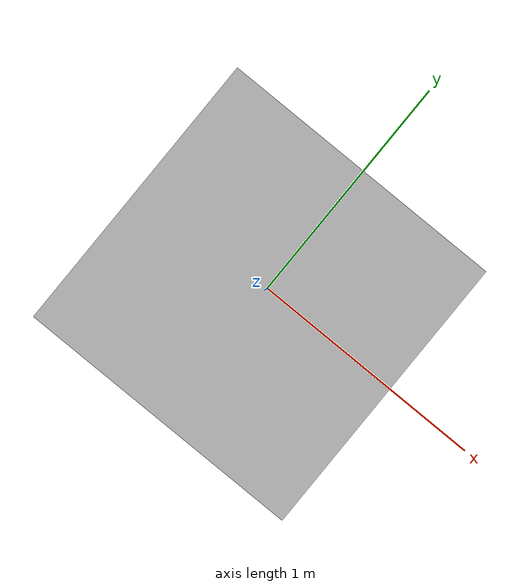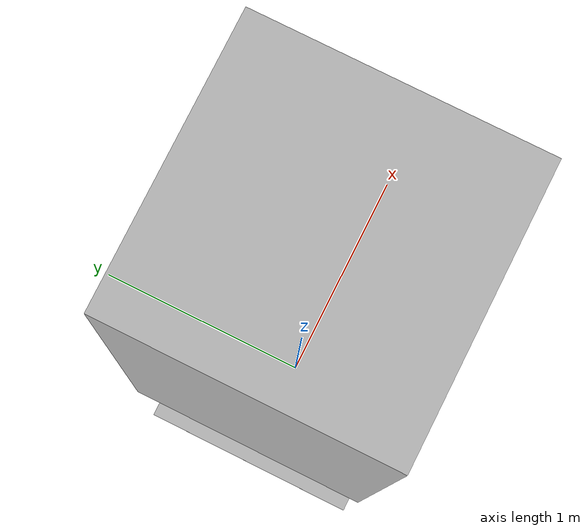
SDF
<?xml version="1.0"?>
<sdf version='1.5'>
  <world name='world_1'>
    <scene>
      <shadows>1</shadows>
      <ambient>0.4 0.4 0.4 1</ambient>
      <background>0.7 0.7 0.7 1</background>
    </scene>
    <physics type='ode'>
      <max_contacts>250</max_contacts>
      <ode>
        <solver>
          <type>quick</type>
          <iters>20</iters>
          <sor>1.3</sor>
          <use_dynamic_moi_rescaling>0</use_dynamic_moi_rescaling>
        </solver>
        <constraints>
          <cfm>0</cfm>
          <erp>0.2</erp>
          <contact_max_correcting_vel>100</contact_max_correcting_vel>
          <contact_surface_layer>0</contact_surface_layer>
        </constraints>
      </ode>
      <gravity>0 0 -10</gravity>
      <max_step_size>0.001</max_step_size>
      <real_time_factor>1</real_time_factor>
      <real_time_update_rate>1000</real_time_update_rate>
      <magnetic_field>5.5645e-06 2.28758e-05 -4.23884e-05</magnetic_field>
    </physics>
    <model name='model_1'>
      <pose>0 0 2 0 -0 0</pose>
      <link name='link_1'>
        <pose>0 0 0 0 -0 0</pose>
        <inertial>
          <pose>0 0 0 0 -0 0</pose>
          <inertia>
            <ixx>1</ixx>
            <ixy>0</ixy>
            <ixz>0</ixz>
            <iyy>1</iyy>
            <iyz>0</iyz>
            <izz>1</izz>
          </inertia>
          <mass>10</mass>
        </inertial>
        <visual name='visual_box'>
          <pose>0 0 0 0 -0 0</pose>
          <geometry>
            <box>
              <size>1 1 2</size>
            </box>
          </geometry>
          <cast_shadows>1</cast_shadows>
          <laser_retro>100</laser_retro>
        </visual>
        <collision name='collision_box'>
          <pose>0 0 0 0 -0 0</pose>
          <max_contacts>250</max_contacts>
          <geometry>
            <box>
              <size>1 1 2</size>
            </box>
          </geometry>
          <surface>
            <friction>
              <ode>
                <mu>0.5</mu>
                <mu2>0.2</mu2>
                <fdir1>1 0 0</fdir1>
                <slip1>0</slip1>
                <slip2>0</slip2>
              </ode>
            </friction>
            <bounce>
              <restitution_coefficient>0</restitution_coefficient>
              <threshold>1e+06</threshold>
            </bounce>
            <contact>
              <ode>
                <soft_cfm>0</soft_cfm>
                <soft_erp>0.2</soft_erp>
                <kp>1e+15</kp>
                <kd>1e+13</kd>
                <max_vel>100</max_vel>
                <min_depth>0.0001</min_depth>
              </ode>
            </contact>
          </surface>
          <laser_retro>100</laser_retro>
        </collision>
        <sensor name='sensor_contact' type='contact'>
          <pose>0 0 0 0 -0 0</pose>
          <contact>
            <collision>__default__</collision>
            <topic>__default_topic__</topic>
          </contact>
          <always_on>1</always_on>
          <update_rate>1000</update_rate>
        </sensor>
        <gravity>1</gravity>
        <self_collide>1</self_collide>
        <kinematic>0</kinematic>
        <velocity_decay>
          <linear>0</linear>
          <angular>0</angular>
        </velocity_decay>
      </link>
      <static>0</static>
    </model>
    <model name='gplane'>
      <pose>0 0 0 0 -0 0</pose>
      <link name='plane'>
        <pose>0 0 0 0 -0 0</pose>
        <collision name='plane'>
          <pose>0 0 0 0 -0 0</pose>
          <geometry>
            <plane>
              <normal>0 0 1</normal>
              <size>1 1</size>
            </plane>
          </geometry>
          <surface>
            <friction>
              <ode>
                <mu>50</mu>
                <mu2>50</mu2>
                <fdir1>0 0 0</fdir1>
                <slip1>0</slip1>
                <slip2>0</slip2>
              </ode>
            </friction>
            <bounce>
              <restitution_coefficient>0</restitution_coefficient>
              <threshold>0</threshold>
            </bounce>
            <contact>
              <ode>
                <soft_cfm>0</soft_cfm>
                <soft_erp>0</soft_erp>
                <kp>1e+09</kp>
                <kd>1</kd>
                <max_vel>-1</max_vel>
                <min_depth>0</min_depth>
              </ode>
            </contact>
          </surface>
          <laser_retro>0</laser_retro>
        </collision>
        <visual name='old_gazebo_xml_visual'>
          <pose>0 0 0 0 -0 0</pose>
          <geometry>
            <plane>
              <normal>0 0 1</normal>
              <size>1 1</size>
            </plane>
          </geometry>
          <cast_shadows>1</cast_shadows>
          <laser_retro>0</laser_retro>
          <transparency>0</transparency>
        </visual>
        <gravity>1</gravity>
        <self_collide>0</self_collide>
        <kinematic>0</kinematic>
        <velocity_decay>
          <linear>0</linear>
          <angular>0</angular>
        </velocity_decay>
      </link>
      <static>1</static>
    </model>
  </world>
</sdf>
